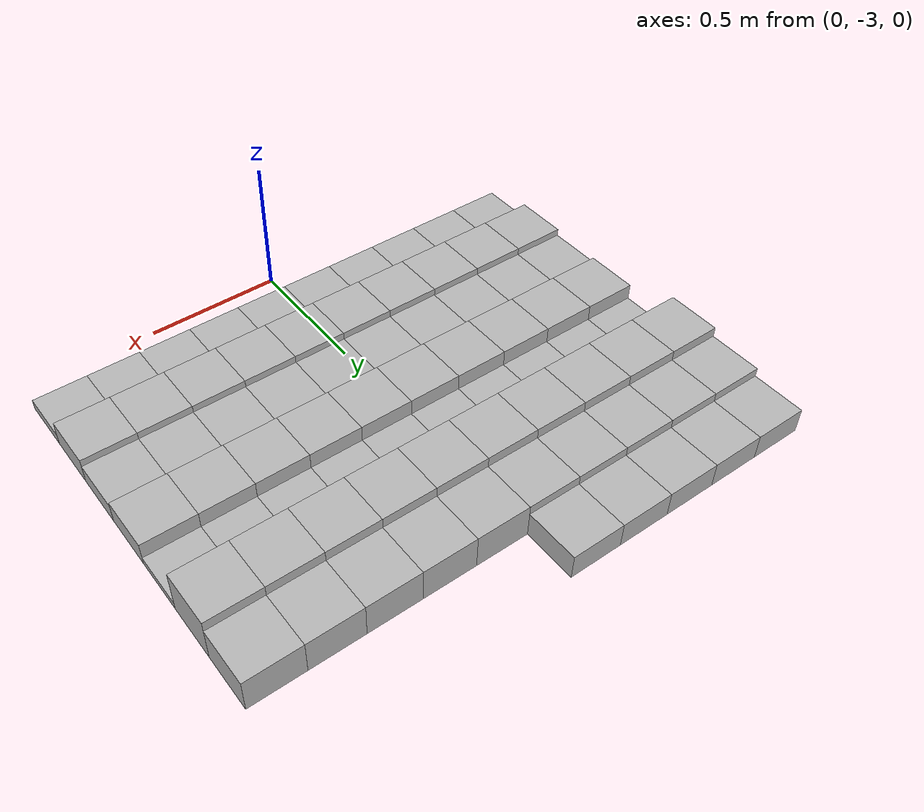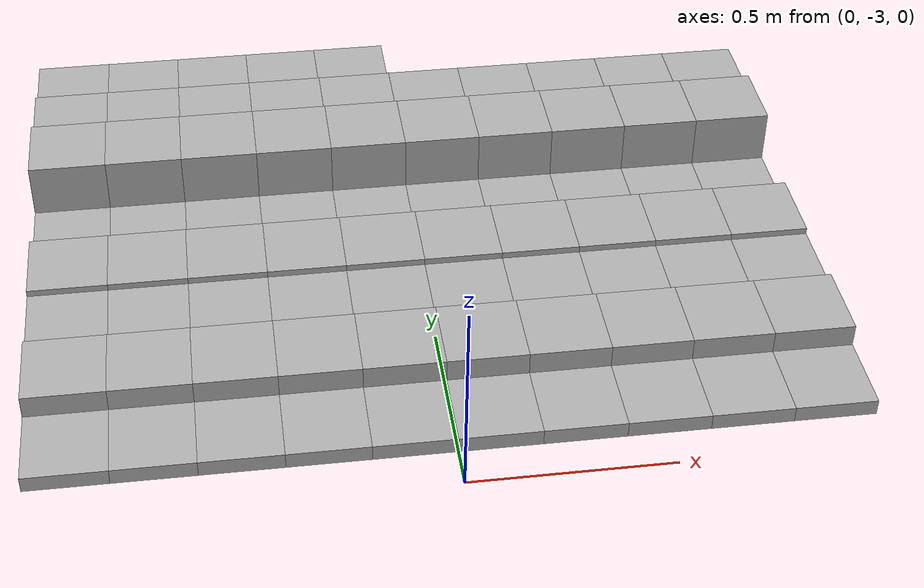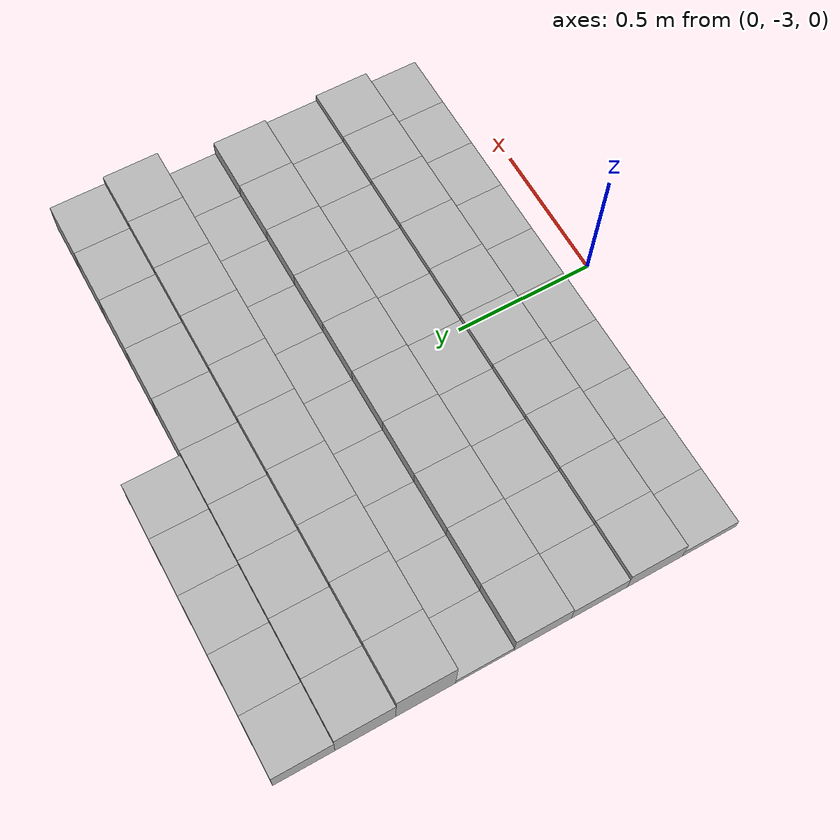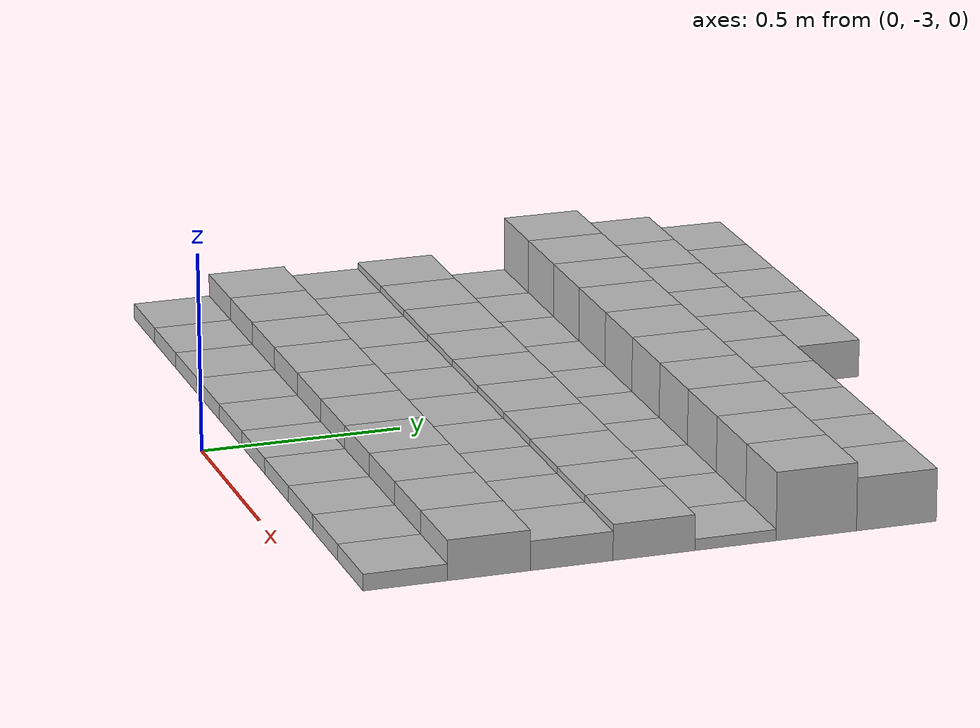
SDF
<sdf version="1.6">
 <model name="Terrain">
  <static>true</static>
  <link name="box_7_0">
   <pose>-0.9 -1.4 0.0484710517982 0 0 0</pose>
   <inertial>
    <mass>1.0</mass>
    <inertia><ixx>0.0</ixx><ixy>0.0</ixy><ixz>0.0</ixz><iyy>0.0</iyy><iyz>0.0</iyz><izz>0.0</izz></inertia>
   </inertial>
   <collision name="collision"><geometry><box><size>0.2 0.2 0.0969421035965</size></box></geometry></collision>
   <visual name="visual"><geometry><box><size>0.2 0.2 0.0969421035965</size></box></geometry></visual>
  </link>
  <link name="box_7_1">
   <pose>-0.7 -1.4 0.0484710517982 0 0 0</pose>
   <inertial>
    <mass>1.0</mass>
    <inertia><ixx>0.0</ixx><ixy>0.0</ixy><ixz>0.0</ixz><iyy>0.0</iyy><iyz>0.0</iyz><izz>0.0</izz></inertia>
   </inertial>
   <collision name="collision"><geometry><box><size>0.2 0.2 0.0969421035965</size></box></geometry></collision>
   <visual name="visual"><geometry><box><size>0.2 0.2 0.0969421035965</size></box></geometry></visual>
  </link>
  <link name="box_7_2">
   <pose>-0.5 -1.4 0.0484710517982 0 0 0</pose>
   <inertial>
    <mass>1.0</mass>
    <inertia><ixx>0.0</ixx><ixy>0.0</ixy><ixz>0.0</ixz><iyy>0.0</iyy><iyz>0.0</iyz><izz>0.0</izz></inertia>
   </inertial>
   <collision name="collision"><geometry><box><size>0.2 0.2 0.0969421035965</size></box></geometry></collision>
   <visual name="visual"><geometry><box><size>0.2 0.2 0.0969421035965</size></box></geometry></visual>
  </link>
  <link name="box_7_3">
   <pose>-0.3 -1.4 0.0484710517982 0 0 0</pose>
   <inertial>
    <mass>1.0</mass>
    <inertia><ixx>0.0</ixx><ixy>0.0</ixy><ixz>0.0</ixz><iyy>0.0</iyy><iyz>0.0</iyz><izz>0.0</izz></inertia>
   </inertial>
   <collision name="collision"><geometry><box><size>0.2 0.2 0.0969421035965</size></box></geometry></collision>
   <visual name="visual"><geometry><box><size>0.2 0.2 0.0969421035965</size></box></geometry></visual>
  </link>
  <link name="box_7_4">
   <pose>-0.1 -1.4 0.0484710517982 0 0 0</pose>
   <inertial>
    <mass>1.0</mass>
    <inertia><ixx>0.0</ixx><ixy>0.0</ixy><ixz>0.0</ixz><iyy>0.0</iyy><iyz>0.0</iyz><izz>0.0</izz></inertia>
   </inertial>
   <collision name="collision"><geometry><box><size>0.2 0.2 0.0969421035965</size></box></geometry></collision>
   <visual name="visual"><geometry><box><size>0.2 0.2 0.0969421035965</size></box></geometry></visual>
  </link>
  <link name="box_8_0">
   <pose>-0.9 -1.6 0.0655136084926 0 0 0</pose>
   <inertial>
    <mass>1.0</mass>
    <inertia><ixx>0.0</ixx><ixy>0.0</ixy><ixz>0.0</ixz><iyy>0.0</iyy><iyz>0.0</iyz><izz>0.0</izz></inertia>
   </inertial>
   <collision name="collision"><geometry><box><size>0.2 0.2 0.131027216985</size></box></geometry></collision>
   <visual name="visual"><geometry><box><size>0.2 0.2 0.131027216985</size></box></geometry></visual>
  </link>
  <link name="box_8_1">
   <pose>-0.7 -1.6 0.0655136084926 0 0 0</pose>
   <inertial>
    <mass>1.0</mass>
    <inertia><ixx>0.0</ixx><ixy>0.0</ixy><ixz>0.0</ixz><iyy>0.0</iyy><iyz>0.0</iyz><izz>0.0</izz></inertia>
   </inertial>
   <collision name="collision"><geometry><box><size>0.2 0.2 0.131027216985</size></box></geometry></collision>
   <visual name="visual"><geometry><box><size>0.2 0.2 0.131027216985</size></box></geometry></visual>
  </link>
  <link name="box_8_2">
   <pose>-0.5 -1.6 0.0655136084926 0 0 0</pose>
   <inertial>
    <mass>1.0</mass>
    <inertia><ixx>0.0</ixx><ixy>0.0</ixy><ixz>0.0</ixz><iyy>0.0</iyy><iyz>0.0</iyz><izz>0.0</izz></inertia>
   </inertial>
   <collision name="collision"><geometry><box><size>0.2 0.2 0.131027216985</size></box></geometry></collision>
   <visual name="visual"><geometry><box><size>0.2 0.2 0.131027216985</size></box></geometry></visual>
  </link>
  <link name="box_8_3">
   <pose>-0.3 -1.6 0.0655136084926 0 0 0</pose>
   <inertial>
    <mass>1.0</mass>
    <inertia><ixx>0.0</ixx><ixy>0.0</ixy><ixz>0.0</ixz><iyy>0.0</iyy><iyz>0.0</iyz><izz>0.0</izz></inertia>
   </inertial>
   <collision name="collision"><geometry><box><size>0.2 0.2 0.131027216985</size></box></geometry></collision>
   <visual name="visual"><geometry><box><size>0.2 0.2 0.131027216985</size></box></geometry></visual>
  </link>
  <link name="box_8_4">
   <pose>-0.1 -1.6 0.0655136084926 0 0 0</pose>
   <inertial>
    <mass>1.0</mass>
    <inertia><ixx>0.0</ixx><ixy>0.0</ixy><ixz>0.0</ixz><iyy>0.0</iyy><iyz>0.0</iyz><izz>0.0</izz></inertia>
   </inertial>
   <collision name="collision"><geometry><box><size>0.2 0.2 0.131027216985</size></box></geometry></collision>
   <visual name="visual"><geometry><box><size>0.2 0.2 0.131027216985</size></box></geometry></visual>
  </link>
  <link name="box_8_5">
   <pose>0.1 -1.6 0.0655136084926 0 0 0</pose>
   <inertial>
    <mass>1.0</mass>
    <inertia><ixx>0.0</ixx><ixy>0.0</ixy><ixz>0.0</ixz><iyy>0.0</iyy><iyz>0.0</iyz><izz>0.0</izz></inertia>
   </inertial>
   <collision name="collision"><geometry><box><size>0.2 0.2 0.131027216985</size></box></geometry></collision>
   <visual name="visual"><geometry><box><size>0.2 0.2 0.131027216985</size></box></geometry></visual>
  </link>
  <link name="box_8_6">
   <pose>0.3 -1.6 0.0655136084926 0 0 0</pose>
   <inertial>
    <mass>1.0</mass>
    <inertia><ixx>0.0</ixx><ixy>0.0</ixy><ixz>0.0</ixz><iyy>0.0</iyy><iyz>0.0</iyz><izz>0.0</izz></inertia>
   </inertial>
   <collision name="collision"><geometry><box><size>0.2 0.2 0.131027216985</size></box></geometry></collision>
   <visual name="visual"><geometry><box><size>0.2 0.2 0.131027216985</size></box></geometry></visual>
  </link>
  <link name="box_8_7">
   <pose>0.5 -1.6 0.0655136084926 0 0 0</pose>
   <inertial>
    <mass>1.0</mass>
    <inertia><ixx>0.0</ixx><ixy>0.0</ixy><ixz>0.0</ixz><iyy>0.0</iyy><iyz>0.0</iyz><izz>0.0</izz></inertia>
   </inertial>
   <collision name="collision"><geometry><box><size>0.2 0.2 0.131027216985</size></box></geometry></collision>
   <visual name="visual"><geometry><box><size>0.2 0.2 0.131027216985</size></box></geometry></visual>
  </link>
  <link name="box_8_8">
   <pose>0.7 -1.6 0.0655136084926 0 0 0</pose>
   <inertial>
    <mass>1.0</mass>
    <inertia><ixx>0.0</ixx><ixy>0.0</ixy><ixz>0.0</ixz><iyy>0.0</iyy><iyz>0.0</iyz><izz>0.0</izz></inertia>
   </inertial>
   <collision name="collision"><geometry><box><size>0.2 0.2 0.131027216985</size></box></geometry></collision>
   <visual name="visual"><geometry><box><size>0.2 0.2 0.131027216985</size></box></geometry></visual>
  </link>
  <link name="box_8_9">
   <pose>0.9 -1.6 0.0655136084926 0 0 0</pose>
   <inertial>
    <mass>1.0</mass>
    <inertia><ixx>0.0</ixx><ixy>0.0</ixy><ixz>0.0</ixz><iyy>0.0</iyy><iyz>0.0</iyz><izz>0.0</izz></inertia>
   </inertial>
   <collision name="collision"><geometry><box><size>0.2 0.2 0.131027216985</size></box></geometry></collision>
   <visual name="visual"><geometry><box><size>0.2 0.2 0.131027216985</size></box></geometry></visual>
  </link>
  <link name="box_9_0">
   <pose>-0.9 -1.8 0.0845597727899 0 0 0</pose>
   <inertial>
    <mass>1.0</mass>
    <inertia><ixx>0.0</ixx><ixy>0.0</ixy><ixz>0.0</ixz><iyy>0.0</iyy><iyz>0.0</iyz><izz>0.0</izz></inertia>
   </inertial>
   <collision name="collision"><geometry><box><size>0.2 0.2 0.16911954558</size></box></geometry></collision>
   <visual name="visual"><geometry><box><size>0.2 0.2 0.16911954558</size></box></geometry></visual>
  </link>
  <link name="box_9_1">
   <pose>-0.7 -1.8 0.0845597727899 0 0 0</pose>
   <inertial>
    <mass>1.0</mass>
    <inertia><ixx>0.0</ixx><ixy>0.0</ixy><ixz>0.0</ixz><iyy>0.0</iyy><iyz>0.0</iyz><izz>0.0</izz></inertia>
   </inertial>
   <collision name="collision"><geometry><box><size>0.2 0.2 0.16911954558</size></box></geometry></collision>
   <visual name="visual"><geometry><box><size>0.2 0.2 0.16911954558</size></box></geometry></visual>
  </link>
  <link name="box_9_2">
   <pose>-0.5 -1.8 0.0845597727899 0 0 0</pose>
   <inertial>
    <mass>1.0</mass>
    <inertia><ixx>0.0</ixx><ixy>0.0</ixy><ixz>0.0</ixz><iyy>0.0</iyy><iyz>0.0</iyz><izz>0.0</izz></inertia>
   </inertial>
   <collision name="collision"><geometry><box><size>0.2 0.2 0.16911954558</size></box></geometry></collision>
   <visual name="visual"><geometry><box><size>0.2 0.2 0.16911954558</size></box></geometry></visual>
  </link>
  <link name="box_9_3">
   <pose>-0.3 -1.8 0.0845597727899 0 0 0</pose>
   <inertial>
    <mass>1.0</mass>
    <inertia><ixx>0.0</ixx><ixy>0.0</ixy><ixz>0.0</ixz><iyy>0.0</iyy><iyz>0.0</iyz><izz>0.0</izz></inertia>
   </inertial>
   <collision name="collision"><geometry><box><size>0.2 0.2 0.16911954558</size></box></geometry></collision>
   <visual name="visual"><geometry><box><size>0.2 0.2 0.16911954558</size></box></geometry></visual>
  </link>
  <link name="box_9_4">
   <pose>-0.1 -1.8 0.0845597727899 0 0 0</pose>
   <inertial>
    <mass>1.0</mass>
    <inertia><ixx>0.0</ixx><ixy>0.0</ixy><ixz>0.0</ixz><iyy>0.0</iyy><iyz>0.0</iyz><izz>0.0</izz></inertia>
   </inertial>
   <collision name="collision"><geometry><box><size>0.2 0.2 0.16911954558</size></box></geometry></collision>
   <visual name="visual"><geometry><box><size>0.2 0.2 0.16911954558</size></box></geometry></visual>
  </link>
  <link name="box_9_5">
   <pose>0.1 -1.8 0.0845597727899 0 0 0</pose>
   <inertial>
    <mass>1.0</mass>
    <inertia><ixx>0.0</ixx><ixy>0.0</ixy><ixz>0.0</ixz><iyy>0.0</iyy><iyz>0.0</iyz><izz>0.0</izz></inertia>
   </inertial>
   <collision name="collision"><geometry><box><size>0.2 0.2 0.16911954558</size></box></geometry></collision>
   <visual name="visual"><geometry><box><size>0.2 0.2 0.16911954558</size></box></geometry></visual>
  </link>
  <link name="box_9_6">
   <pose>0.3 -1.8 0.0845597727899 0 0 0</pose>
   <inertial>
    <mass>1.0</mass>
    <inertia><ixx>0.0</ixx><ixy>0.0</ixy><ixz>0.0</ixz><iyy>0.0</iyy><iyz>0.0</iyz><izz>0.0</izz></inertia>
   </inertial>
   <collision name="collision"><geometry><box><size>0.2 0.2 0.16911954558</size></box></geometry></collision>
   <visual name="visual"><geometry><box><size>0.2 0.2 0.16911954558</size></box></geometry></visual>
  </link>
  <link name="box_9_7">
   <pose>0.5 -1.8 0.0845597727899 0 0 0</pose>
   <inertial>
    <mass>1.0</mass>
    <inertia><ixx>0.0</ixx><ixy>0.0</ixy><ixz>0.0</ixz><iyy>0.0</iyy><iyz>0.0</iyz><izz>0.0</izz></inertia>
   </inertial>
   <collision name="collision"><geometry><box><size>0.2 0.2 0.16911954558</size></box></geometry></collision>
   <visual name="visual"><geometry><box><size>0.2 0.2 0.16911954558</size></box></geometry></visual>
  </link>
  <link name="box_9_8">
   <pose>0.7 -1.8 0.0845597727899 0 0 0</pose>
   <inertial>
    <mass>1.0</mass>
    <inertia><ixx>0.0</ixx><ixy>0.0</ixy><ixz>0.0</ixz><iyy>0.0</iyy><iyz>0.0</iyz><izz>0.0</izz></inertia>
   </inertial>
   <collision name="collision"><geometry><box><size>0.2 0.2 0.16911954558</size></box></geometry></collision>
   <visual name="visual"><geometry><box><size>0.2 0.2 0.16911954558</size></box></geometry></visual>
  </link>
  <link name="box_9_9">
   <pose>0.9 -1.8 0.0845597727899 0 0 0</pose>
   <inertial>
    <mass>1.0</mass>
    <inertia><ixx>0.0</ixx><ixy>0.0</ixy><ixz>0.0</ixz><iyy>0.0</iyy><iyz>0.0</iyz><izz>0.0</izz></inertia>
   </inertial>
   <collision name="collision"><geometry><box><size>0.2 0.2 0.16911954558</size></box></geometry></collision>
   <visual name="visual"><geometry><box><size>0.2 0.2 0.16911954558</size></box></geometry></visual>
  </link>
  <link name="box_10_0">
   <pose>-0.9 -2.0 0.0138919958948 0 0 0</pose>
   <inertial>
    <mass>1.0</mass>
    <inertia><ixx>0.0</ixx><ixy>0.0</ixy><ixz>0.0</ixz><iyy>0.0</iyy><iyz>0.0</iyz><izz>0.0</izz></inertia>
   </inertial>
   <collision name="collision"><geometry><box><size>0.2 0.2 0.0277839917896</size></box></geometry></collision>
   <visual name="visual"><geometry><box><size>0.2 0.2 0.0277839917896</size></box></geometry></visual>
  </link>
  <link name="box_10_1">
   <pose>-0.7 -2.0 0.0138919958948 0 0 0</pose>
   <inertial>
    <mass>1.0</mass>
    <inertia><ixx>0.0</ixx><ixy>0.0</ixy><ixz>0.0</ixz><iyy>0.0</iyy><iyz>0.0</iyz><izz>0.0</izz></inertia>
   </inertial>
   <collision name="collision"><geometry><box><size>0.2 0.2 0.0277839917896</size></box></geometry></collision>
   <visual name="visual"><geometry><box><size>0.2 0.2 0.0277839917896</size></box></geometry></visual>
  </link>
  <link name="box_10_2">
   <pose>-0.5 -2.0 0.0138919958948 0 0 0</pose>
   <inertial>
    <mass>1.0</mass>
    <inertia><ixx>0.0</ixx><ixy>0.0</ixy><ixz>0.0</ixz><iyy>0.0</iyy><iyz>0.0</iyz><izz>0.0</izz></inertia>
   </inertial>
   <collision name="collision"><geometry><box><size>0.2 0.2 0.0277839917896</size></box></geometry></collision>
   <visual name="visual"><geometry><box><size>0.2 0.2 0.0277839917896</size></box></geometry></visual>
  </link>
  <link name="box_10_3">
   <pose>-0.3 -2.0 0.0138919958948 0 0 0</pose>
   <inertial>
    <mass>1.0</mass>
    <inertia><ixx>0.0</ixx><ixy>0.0</ixy><ixz>0.0</ixz><iyy>0.0</iyy><iyz>0.0</iyz><izz>0.0</izz></inertia>
   </inertial>
   <collision name="collision"><geometry><box><size>0.2 0.2 0.0277839917896</size></box></geometry></collision>
   <visual name="visual"><geometry><box><size>0.2 0.2 0.0277839917896</size></box></geometry></visual>
  </link>
  <link name="box_10_4">
   <pose>-0.1 -2.0 0.0138919958948 0 0 0</pose>
   <inertial>
    <mass>1.0</mass>
    <inertia><ixx>0.0</ixx><ixy>0.0</ixy><ixz>0.0</ixz><iyy>0.0</iyy><iyz>0.0</iyz><izz>0.0</izz></inertia>
   </inertial>
   <collision name="collision"><geometry><box><size>0.2 0.2 0.0277839917896</size></box></geometry></collision>
   <visual name="visual"><geometry><box><size>0.2 0.2 0.0277839917896</size></box></geometry></visual>
  </link>
  <link name="box_10_5">
   <pose>0.1 -2.0 0.0138919958948 0 0 0</pose>
   <inertial>
    <mass>1.0</mass>
    <inertia><ixx>0.0</ixx><ixy>0.0</ixy><ixz>0.0</ixz><iyy>0.0</iyy><iyz>0.0</iyz><izz>0.0</izz></inertia>
   </inertial>
   <collision name="collision"><geometry><box><size>0.2 0.2 0.0277839917896</size></box></geometry></collision>
   <visual name="visual"><geometry><box><size>0.2 0.2 0.0277839917896</size></box></geometry></visual>
  </link>
  <link name="box_10_6">
   <pose>0.3 -2.0 0.0138919958948 0 0 0</pose>
   <inertial>
    <mass>1.0</mass>
    <inertia><ixx>0.0</ixx><ixy>0.0</ixy><ixz>0.0</ixz><iyy>0.0</iyy><iyz>0.0</iyz><izz>0.0</izz></inertia>
   </inertial>
   <collision name="collision"><geometry><box><size>0.2 0.2 0.0277839917896</size></box></geometry></collision>
   <visual name="visual"><geometry><box><size>0.2 0.2 0.0277839917896</size></box></geometry></visual>
  </link>
  <link name="box_10_7">
   <pose>0.5 -2.0 0.0138919958948 0 0 0</pose>
   <inertial>
    <mass>1.0</mass>
    <inertia><ixx>0.0</ixx><ixy>0.0</ixy><ixz>0.0</ixz><iyy>0.0</iyy><iyz>0.0</iyz><izz>0.0</izz></inertia>
   </inertial>
   <collision name="collision"><geometry><box><size>0.2 0.2 0.0277839917896</size></box></geometry></collision>
   <visual name="visual"><geometry><box><size>0.2 0.2 0.0277839917896</size></box></geometry></visual>
  </link>
  <link name="box_10_8">
   <pose>0.7 -2.0 0.0138919958948 0 0 0</pose>
   <inertial>
    <mass>1.0</mass>
    <inertia><ixx>0.0</ixx><ixy>0.0</ixy><ixz>0.0</ixz><iyy>0.0</iyy><iyz>0.0</iyz><izz>0.0</izz></inertia>
   </inertial>
   <collision name="collision"><geometry><box><size>0.2 0.2 0.0277839917896</size></box></geometry></collision>
   <visual name="visual"><geometry><box><size>0.2 0.2 0.0277839917896</size></box></geometry></visual>
  </link>
  <link name="box_10_9">
   <pose>0.9 -2.0 0.0138919958948 0 0 0</pose>
   <inertial>
    <mass>1.0</mass>
    <inertia><ixx>0.0</ixx><ixy>0.0</ixy><ixz>0.0</ixz><iyy>0.0</iyy><iyz>0.0</iyz><izz>0.0</izz></inertia>
   </inertial>
   <collision name="collision"><geometry><box><size>0.2 0.2 0.0277839917896</size></box></geometry></collision>
   <visual name="visual"><geometry><box><size>0.2 0.2 0.0277839917896</size></box></geometry></visual>
  </link>
  <link name="box_11_0">
   <pose>-0.9 -2.2 0.0443277990659 0 0 0</pose>
   <inertial>
    <mass>1.0</mass>
    <inertia><ixx>0.0</ixx><ixy>0.0</ixy><ixz>0.0</ixz><iyy>0.0</iyy><iyz>0.0</iyz><izz>0.0</izz></inertia>
   </inertial>
   <collision name="collision"><geometry><box><size>0.2 0.2 0.0886555981318</size></box></geometry></collision>
   <visual name="visual"><geometry><box><size>0.2 0.2 0.0886555981318</size></box></geometry></visual>
  </link>
  <link name="box_11_1">
   <pose>-0.7 -2.2 0.0443277990659 0 0 0</pose>
   <inertial>
    <mass>1.0</mass>
    <inertia><ixx>0.0</ixx><ixy>0.0</ixy><ixz>0.0</ixz><iyy>0.0</iyy><iyz>0.0</iyz><izz>0.0</izz></inertia>
   </inertial>
   <collision name="collision"><geometry><box><size>0.2 0.2 0.0886555981318</size></box></geometry></collision>
   <visual name="visual"><geometry><box><size>0.2 0.2 0.0886555981318</size></box></geometry></visual>
  </link>
  <link name="box_11_2">
   <pose>-0.5 -2.2 0.0443277990659 0 0 0</pose>
   <inertial>
    <mass>1.0</mass>
    <inertia><ixx>0.0</ixx><ixy>0.0</ixy><ixz>0.0</ixz><iyy>0.0</iyy><iyz>0.0</iyz><izz>0.0</izz></inertia>
   </inertial>
   <collision name="collision"><geometry><box><size>0.2 0.2 0.0886555981318</size></box></geometry></collision>
   <visual name="visual"><geometry><box><size>0.2 0.2 0.0886555981318</size></box></geometry></visual>
  </link>
  <link name="box_11_3">
   <pose>-0.3 -2.2 0.0443277990659 0 0 0</pose>
   <inertial>
    <mass>1.0</mass>
    <inertia><ixx>0.0</ixx><ixy>0.0</ixy><ixz>0.0</ixz><iyy>0.0</iyy><iyz>0.0</iyz><izz>0.0</izz></inertia>
   </inertial>
   <collision name="collision"><geometry><box><size>0.2 0.2 0.0886555981318</size></box></geometry></collision>
   <visual name="visual"><geometry><box><size>0.2 0.2 0.0886555981318</size></box></geometry></visual>
  </link>
  <link name="box_11_4">
   <pose>-0.1 -2.2 0.0443277990659 0 0 0</pose>
   <inertial>
    <mass>1.0</mass>
    <inertia><ixx>0.0</ixx><ixy>0.0</ixy><ixz>0.0</ixz><iyy>0.0</iyy><iyz>0.0</iyz><izz>0.0</izz></inertia>
   </inertial>
   <collision name="collision"><geometry><box><size>0.2 0.2 0.0886555981318</size></box></geometry></collision>
   <visual name="visual"><geometry><box><size>0.2 0.2 0.0886555981318</size></box></geometry></visual>
  </link>
  <link name="box_11_5">
   <pose>0.1 -2.2 0.0443277990659 0 0 0</pose>
   <inertial>
    <mass>1.0</mass>
    <inertia><ixx>0.0</ixx><ixy>0.0</ixy><ixz>0.0</ixz><iyy>0.0</iyy><iyz>0.0</iyz><izz>0.0</izz></inertia>
   </inertial>
   <collision name="collision"><geometry><box><size>0.2 0.2 0.0886555981318</size></box></geometry></collision>
   <visual name="visual"><geometry><box><size>0.2 0.2 0.0886555981318</size></box></geometry></visual>
  </link>
  <link name="box_11_6">
   <pose>0.3 -2.2 0.0443277990659 0 0 0</pose>
   <inertial>
    <mass>1.0</mass>
    <inertia><ixx>0.0</ixx><ixy>0.0</ixy><ixz>0.0</ixz><iyy>0.0</iyy><iyz>0.0</iyz><izz>0.0</izz></inertia>
   </inertial>
   <collision name="collision"><geometry><box><size>0.2 0.2 0.0886555981318</size></box></geometry></collision>
   <visual name="visual"><geometry><box><size>0.2 0.2 0.0886555981318</size></box></geometry></visual>
  </link>
  <link name="box_11_7">
   <pose>0.5 -2.2 0.0443277990659 0 0 0</pose>
   <inertial>
    <mass>1.0</mass>
    <inertia><ixx>0.0</ixx><ixy>0.0</ixy><ixz>0.0</ixz><iyy>0.0</iyy><iyz>0.0</iyz><izz>0.0</izz></inertia>
   </inertial>
   <collision name="collision"><geometry><box><size>0.2 0.2 0.0886555981318</size></box></geometry></collision>
   <visual name="visual"><geometry><box><size>0.2 0.2 0.0886555981318</size></box></geometry></visual>
  </link>
  <link name="box_11_8">
   <pose>0.7 -2.2 0.0443277990659 0 0 0</pose>
   <inertial>
    <mass>1.0</mass>
    <inertia><ixx>0.0</ixx><ixy>0.0</ixy><ixz>0.0</ixz><iyy>0.0</iyy><iyz>0.0</iyz><izz>0.0</izz></inertia>
   </inertial>
   <collision name="collision"><geometry><box><size>0.2 0.2 0.0886555981318</size></box></geometry></collision>
   <visual name="visual"><geometry><box><size>0.2 0.2 0.0886555981318</size></box></geometry></visual>
  </link>
  <link name="box_11_9">
   <pose>0.9 -2.2 0.0443277990659 0 0 0</pose>
   <inertial>
    <mass>1.0</mass>
    <inertia><ixx>0.0</ixx><ixy>0.0</ixy><ixz>0.0</ixz><iyy>0.0</iyy><iyz>0.0</iyz><izz>0.0</izz></inertia>
   </inertial>
   <collision name="collision"><geometry><box><size>0.2 0.2 0.0886555981318</size></box></geometry></collision>
   <visual name="visual"><geometry><box><size>0.2 0.2 0.0886555981318</size></box></geometry></visual>
  </link>
  <link name="box_12_0">
   <pose>-0.9 -2.4 0.0359445676084 0 0 0</pose>
   <inertial>
    <mass>1.0</mass>
    <inertia><ixx>0.0</ixx><ixy>0.0</ixy><ixz>0.0</ixz><iyy>0.0</iyy><iyz>0.0</iyz><izz>0.0</izz></inertia>
   </inertial>
   <collision name="collision"><geometry><box><size>0.2 0.2 0.0718891352169</size></box></geometry></collision>
   <visual name="visual"><geometry><box><size>0.2 0.2 0.0718891352169</size></box></geometry></visual>
  </link>
  <link name="box_12_1">
   <pose>-0.7 -2.4 0.0359445676084 0 0 0</pose>
   <inertial>
    <mass>1.0</mass>
    <inertia><ixx>0.0</ixx><ixy>0.0</ixy><ixz>0.0</ixz><iyy>0.0</iyy><iyz>0.0</iyz><izz>0.0</izz></inertia>
   </inertial>
   <collision name="collision"><geometry><box><size>0.2 0.2 0.0718891352169</size></box></geometry></collision>
   <visual name="visual"><geometry><box><size>0.2 0.2 0.0718891352169</size></box></geometry></visual>
  </link>
  <link name="box_12_2">
   <pose>-0.5 -2.4 0.0359445676084 0 0 0</pose>
   <inertial>
    <mass>1.0</mass>
    <inertia><ixx>0.0</ixx><ixy>0.0</ixy><ixz>0.0</ixz><iyy>0.0</iyy><iyz>0.0</iyz><izz>0.0</izz></inertia>
   </inertial>
   <collision name="collision"><geometry><box><size>0.2 0.2 0.0718891352169</size></box></geometry></collision>
   <visual name="visual"><geometry><box><size>0.2 0.2 0.0718891352169</size></box></geometry></visual>
  </link>
  <link name="box_12_3">
   <pose>-0.3 -2.4 0.0359445676084 0 0 0</pose>
   <inertial>
    <mass>1.0</mass>
    <inertia><ixx>0.0</ixx><ixy>0.0</ixy><ixz>0.0</ixz><iyy>0.0</iyy><iyz>0.0</iyz><izz>0.0</izz></inertia>
   </inertial>
   <collision name="collision"><geometry><box><size>0.2 0.2 0.0718891352169</size></box></geometry></collision>
   <visual name="visual"><geometry><box><size>0.2 0.2 0.0718891352169</size></box></geometry></visual>
  </link>
  <link name="box_12_4">
   <pose>-0.1 -2.4 0.0359445676084 0 0 0</pose>
   <inertial>
    <mass>1.0</mass>
    <inertia><ixx>0.0</ixx><ixy>0.0</ixy><ixz>0.0</ixz><iyy>0.0</iyy><iyz>0.0</iyz><izz>0.0</izz></inertia>
   </inertial>
   <collision name="collision"><geometry><box><size>0.2 0.2 0.0718891352169</size></box></geometry></collision>
   <visual name="visual"><geometry><box><size>0.2 0.2 0.0718891352169</size></box></geometry></visual>
  </link>
  <link name="box_12_5">
   <pose>0.1 -2.4 0.0359445676084 0 0 0</pose>
   <inertial>
    <mass>1.0</mass>
    <inertia><ixx>0.0</ixx><ixy>0.0</ixy><ixz>0.0</ixz><iyy>0.0</iyy><iyz>0.0</iyz><izz>0.0</izz></inertia>
   </inertial>
   <collision name="collision"><geometry><box><size>0.2 0.2 0.0718891352169</size></box></geometry></collision>
   <visual name="visual"><geometry><box><size>0.2 0.2 0.0718891352169</size></box></geometry></visual>
  </link>
  <link name="box_12_6">
   <pose>0.3 -2.4 0.0359445676084 0 0 0</pose>
   <inertial>
    <mass>1.0</mass>
    <inertia><ixx>0.0</ixx><ixy>0.0</ixy><ixz>0.0</ixz><iyy>0.0</iyy><iyz>0.0</iyz><izz>0.0</izz></inertia>
   </inertial>
   <collision name="collision"><geometry><box><size>0.2 0.2 0.0718891352169</size></box></geometry></collision>
   <visual name="visual"><geometry><box><size>0.2 0.2 0.0718891352169</size></box></geometry></visual>
  </link>
  <link name="box_12_7">
   <pose>0.5 -2.4 0.0359445676084 0 0 0</pose>
   <inertial>
    <mass>1.0</mass>
    <inertia><ixx>0.0</ixx><ixy>0.0</ixy><ixz>0.0</ixz><iyy>0.0</iyy><iyz>0.0</iyz><izz>0.0</izz></inertia>
   </inertial>
   <collision name="collision"><geometry><box><size>0.2 0.2 0.0718891352169</size></box></geometry></collision>
   <visual name="visual"><geometry><box><size>0.2 0.2 0.0718891352169</size></box></geometry></visual>
  </link>
  <link name="box_12_8">
   <pose>0.7 -2.4 0.0359445676084 0 0 0</pose>
   <inertial>
    <mass>1.0</mass>
    <inertia><ixx>0.0</ixx><ixy>0.0</ixy><ixz>0.0</ixz><iyy>0.0</iyy><iyz>0.0</iyz><izz>0.0</izz></inertia>
   </inertial>
   <collision name="collision"><geometry><box><size>0.2 0.2 0.0718891352169</size></box></geometry></collision>
   <visual name="visual"><geometry><box><size>0.2 0.2 0.0718891352169</size></box></geometry></visual>
  </link>
  <link name="box_12_9">
   <pose>0.9 -2.4 0.0359445676084 0 0 0</pose>
   <inertial>
    <mass>1.0</mass>
    <inertia><ixx>0.0</ixx><ixy>0.0</ixy><ixz>0.0</ixz><iyy>0.0</iyy><iyz>0.0</iyz><izz>0.0</izz></inertia>
   </inertial>
   <collision name="collision"><geometry><box><size>0.2 0.2 0.0718891352169</size></box></geometry></collision>
   <visual name="visual"><geometry><box><size>0.2 0.2 0.0718891352169</size></box></geometry></visual>
  </link>
  <link name="box_13_0">
   <pose>-0.9 -2.6 0.049604219729 0 0 0</pose>
   <inertial>
    <mass>1.0</mass>
    <inertia><ixx>0.0</ixx><ixy>0.0</ixy><ixz>0.0</ixz><iyy>0.0</iyy><iyz>0.0</iyz><izz>0.0</izz></inertia>
   </inertial>
   <collision name="collision"><geometry><box><size>0.2 0.2 0.0992084394581</size></box></geometry></collision>
   <visual name="visual"><geometry><box><size>0.2 0.2 0.0992084394581</size></box></geometry></visual>
  </link>
  <link name="box_13_1">
   <pose>-0.7 -2.6 0.049604219729 0 0 0</pose>
   <inertial>
    <mass>1.0</mass>
    <inertia><ixx>0.0</ixx><ixy>0.0</ixy><ixz>0.0</ixz><iyy>0.0</iyy><iyz>0.0</iyz><izz>0.0</izz></inertia>
   </inertial>
   <collision name="collision"><geometry><box><size>0.2 0.2 0.0992084394581</size></box></geometry></collision>
   <visual name="visual"><geometry><box><size>0.2 0.2 0.0992084394581</size></box></geometry></visual>
  </link>
  <link name="box_13_2">
   <pose>-0.5 -2.6 0.049604219729 0 0 0</pose>
   <inertial>
    <mass>1.0</mass>
    <inertia><ixx>0.0</ixx><ixy>0.0</ixy><ixz>0.0</ixz><iyy>0.0</iyy><iyz>0.0</iyz><izz>0.0</izz></inertia>
   </inertial>
   <collision name="collision"><geometry><box><size>0.2 0.2 0.0992084394581</size></box></geometry></collision>
   <visual name="visual"><geometry><box><size>0.2 0.2 0.0992084394581</size></box></geometry></visual>
  </link>
  <link name="box_13_3">
   <pose>-0.3 -2.6 0.049604219729 0 0 0</pose>
   <inertial>
    <mass>1.0</mass>
    <inertia><ixx>0.0</ixx><ixy>0.0</ixy><ixz>0.0</ixz><iyy>0.0</iyy><iyz>0.0</iyz><izz>0.0</izz></inertia>
   </inertial>
   <collision name="collision"><geometry><box><size>0.2 0.2 0.0992084394581</size></box></geometry></collision>
   <visual name="visual"><geometry><box><size>0.2 0.2 0.0992084394581</size></box></geometry></visual>
  </link>
  <link name="box_13_4">
   <pose>-0.1 -2.6 0.049604219729 0 0 0</pose>
   <inertial>
    <mass>1.0</mass>
    <inertia><ixx>0.0</ixx><ixy>0.0</ixy><ixz>0.0</ixz><iyy>0.0</iyy><iyz>0.0</iyz><izz>0.0</izz></inertia>
   </inertial>
   <collision name="collision"><geometry><box><size>0.2 0.2 0.0992084394581</size></box></geometry></collision>
   <visual name="visual"><geometry><box><size>0.2 0.2 0.0992084394581</size></box></geometry></visual>
  </link>
  <link name="box_13_5">
   <pose>0.1 -2.6 0.049604219729 0 0 0</pose>
   <inertial>
    <mass>1.0</mass>
    <inertia><ixx>0.0</ixx><ixy>0.0</ixy><ixz>0.0</ixz><iyy>0.0</iyy><iyz>0.0</iyz><izz>0.0</izz></inertia>
   </inertial>
   <collision name="collision"><geometry><box><size>0.2 0.2 0.0992084394581</size></box></geometry></collision>
   <visual name="visual"><geometry><box><size>0.2 0.2 0.0992084394581</size></box></geometry></visual>
  </link>
  <link name="box_13_6">
   <pose>0.3 -2.6 0.049604219729 0 0 0</pose>
   <inertial>
    <mass>1.0</mass>
    <inertia><ixx>0.0</ixx><ixy>0.0</ixy><ixz>0.0</ixz><iyy>0.0</iyy><iyz>0.0</iyz><izz>0.0</izz></inertia>
   </inertial>
   <collision name="collision"><geometry><box><size>0.2 0.2 0.0992084394581</size></box></geometry></collision>
   <visual name="visual"><geometry><box><size>0.2 0.2 0.0992084394581</size></box></geometry></visual>
  </link>
  <link name="box_13_7">
   <pose>0.5 -2.6 0.049604219729 0 0 0</pose>
   <inertial>
    <mass>1.0</mass>
    <inertia><ixx>0.0</ixx><ixy>0.0</ixy><ixz>0.0</ixz><iyy>0.0</iyy><iyz>0.0</iyz><izz>0.0</izz></inertia>
   </inertial>
   <collision name="collision"><geometry><box><size>0.2 0.2 0.0992084394581</size></box></geometry></collision>
   <visual name="visual"><geometry><box><size>0.2 0.2 0.0992084394581</size></box></geometry></visual>
  </link>
  <link name="box_13_8">
   <pose>0.7 -2.6 0.049604219729 0 0 0</pose>
   <inertial>
    <mass>1.0</mass>
    <inertia><ixx>0.0</ixx><ixy>0.0</ixy><ixz>0.0</ixz><iyy>0.0</iyy><iyz>0.0</iyz><izz>0.0</izz></inertia>
   </inertial>
   <collision name="collision"><geometry><box><size>0.2 0.2 0.0992084394581</size></box></geometry></collision>
   <visual name="visual"><geometry><box><size>0.2 0.2 0.0992084394581</size></box></geometry></visual>
  </link>
  <link name="box_13_9">
   <pose>0.9 -2.6 0.049604219729 0 0 0</pose>
   <inertial>
    <mass>1.0</mass>
    <inertia><ixx>0.0</ixx><ixy>0.0</ixy><ixz>0.0</ixz><iyy>0.0</iyy><iyz>0.0</iyz><izz>0.0</izz></inertia>
   </inertial>
   <collision name="collision"><geometry><box><size>0.2 0.2 0.0992084394581</size></box></geometry></collision>
   <visual name="visual"><geometry><box><size>0.2 0.2 0.0992084394581</size></box></geometry></visual>
  </link>
  <link name="box_14_0">
   <pose>-0.9 -2.8 0.0203364745465 0 0 0</pose>
   <inertial>
    <mass>1.0</mass>
    <inertia><ixx>0.0</ixx><ixy>0.0</ixy><ixz>0.0</ixz><iyy>0.0</iyy><iyz>0.0</iyz><izz>0.0</izz></inertia>
   </inertial>
   <collision name="collision"><geometry><box><size>0.2 0.2 0.040672949093</size></box></geometry></collision>
   <visual name="visual"><geometry><box><size>0.2 0.2 0.040672949093</size></box></geometry></visual>
  </link>
  <link name="box_14_1">
   <pose>-0.7 -2.8 0.0203364745465 0 0 0</pose>
   <inertial>
    <mass>1.0</mass>
    <inertia><ixx>0.0</ixx><ixy>0.0</ixy><ixz>0.0</ixz><iyy>0.0</iyy><iyz>0.0</iyz><izz>0.0</izz></inertia>
   </inertial>
   <collision name="collision"><geometry><box><size>0.2 0.2 0.040672949093</size></box></geometry></collision>
   <visual name="visual"><geometry><box><size>0.2 0.2 0.040672949093</size></box></geometry></visual>
  </link>
  <link name="box_14_2">
   <pose>-0.5 -2.8 0.0203364745465 0 0 0</pose>
   <inertial>
    <mass>1.0</mass>
    <inertia><ixx>0.0</ixx><ixy>0.0</ixy><ixz>0.0</ixz><iyy>0.0</iyy><iyz>0.0</iyz><izz>0.0</izz></inertia>
   </inertial>
   <collision name="collision"><geometry><box><size>0.2 0.2 0.040672949093</size></box></geometry></collision>
   <visual name="visual"><geometry><box><size>0.2 0.2 0.040672949093</size></box></geometry></visual>
  </link>
  <link name="box_14_3">
   <pose>-0.3 -2.8 0.0203364745465 0 0 0</pose>
   <inertial>
    <mass>1.0</mass>
    <inertia><ixx>0.0</ixx><ixy>0.0</ixy><ixz>0.0</ixz><iyy>0.0</iyy><iyz>0.0</iyz><izz>0.0</izz></inertia>
   </inertial>
   <collision name="collision"><geometry><box><size>0.2 0.2 0.040672949093</size></box></geometry></collision>
   <visual name="visual"><geometry><box><size>0.2 0.2 0.040672949093</size></box></geometry></visual>
  </link>
  <link name="box_14_4">
   <pose>-0.1 -2.8 0.0203364745465 0 0 0</pose>
   <inertial>
    <mass>1.0</mass>
    <inertia><ixx>0.0</ixx><ixy>0.0</ixy><ixz>0.0</ixz><iyy>0.0</iyy><iyz>0.0</iyz><izz>0.0</izz></inertia>
   </inertial>
   <collision name="collision"><geometry><box><size>0.2 0.2 0.040672949093</size></box></geometry></collision>
   <visual name="visual"><geometry><box><size>0.2 0.2 0.040672949093</size></box></geometry></visual>
  </link>
  <link name="box_14_5">
   <pose>0.1 -2.8 0.0203364745465 0 0 0</pose>
   <inertial>
    <mass>1.0</mass>
    <inertia><ixx>0.0</ixx><ixy>0.0</ixy><ixz>0.0</ixz><iyy>0.0</iyy><iyz>0.0</iyz><izz>0.0</izz></inertia>
   </inertial>
   <collision name="collision"><geometry><box><size>0.2 0.2 0.040672949093</size></box></geometry></collision>
   <visual name="visual"><geometry><box><size>0.2 0.2 0.040672949093</size></box></geometry></visual>
  </link>
  <link name="box_14_6">
   <pose>0.3 -2.8 0.0203364745465 0 0 0</pose>
   <inertial>
    <mass>1.0</mass>
    <inertia><ixx>0.0</ixx><ixy>0.0</ixy><ixz>0.0</ixz><iyy>0.0</iyy><iyz>0.0</iyz><izz>0.0</izz></inertia>
   </inertial>
   <collision name="collision"><geometry><box><size>0.2 0.2 0.040672949093</size></box></geometry></collision>
   <visual name="visual"><geometry><box><size>0.2 0.2 0.040672949093</size></box></geometry></visual>
  </link>
  <link name="box_14_7">
   <pose>0.5 -2.8 0.0203364745465 0 0 0</pose>
   <inertial>
    <mass>1.0</mass>
    <inertia><ixx>0.0</ixx><ixy>0.0</ixy><ixz>0.0</ixz><iyy>0.0</iyy><iyz>0.0</iyz><izz>0.0</izz></inertia>
   </inertial>
   <collision name="collision"><geometry><box><size>0.2 0.2 0.040672949093</size></box></geometry></collision>
   <visual name="visual"><geometry><box><size>0.2 0.2 0.040672949093</size></box></geometry></visual>
  </link>
  <link name="box_14_8">
   <pose>0.7 -2.8 0.0203364745465 0 0 0</pose>
   <inertial>
    <mass>1.0</mass>
    <inertia><ixx>0.0</ixx><ixy>0.0</ixy><ixz>0.0</ixz><iyy>0.0</iyy><iyz>0.0</iyz><izz>0.0</izz></inertia>
   </inertial>
   <collision name="collision"><geometry><box><size>0.2 0.2 0.040672949093</size></box></geometry></collision>
   <visual name="visual"><geometry><box><size>0.2 0.2 0.040672949093</size></box></geometry></visual>
  </link>
  <link name="box_14_9">
   <pose>0.9 -2.8 0.0203364745465 0 0 0</pose>
   <inertial>
    <mass>1.0</mass>
    <inertia><ixx>0.0</ixx><ixy>0.0</ixy><ixz>0.0</ixz><iyy>0.0</iyy><iyz>0.0</iyz><izz>0.0</izz></inertia>
   </inertial>
   <collision name="collision"><geometry><box><size>0.2 0.2 0.040672949093</size></box></geometry></collision>
   <visual name="visual"><geometry><box><size>0.2 0.2 0.040672949093</size></box></geometry></visual>
  </link>
 </model>
</sdf>
